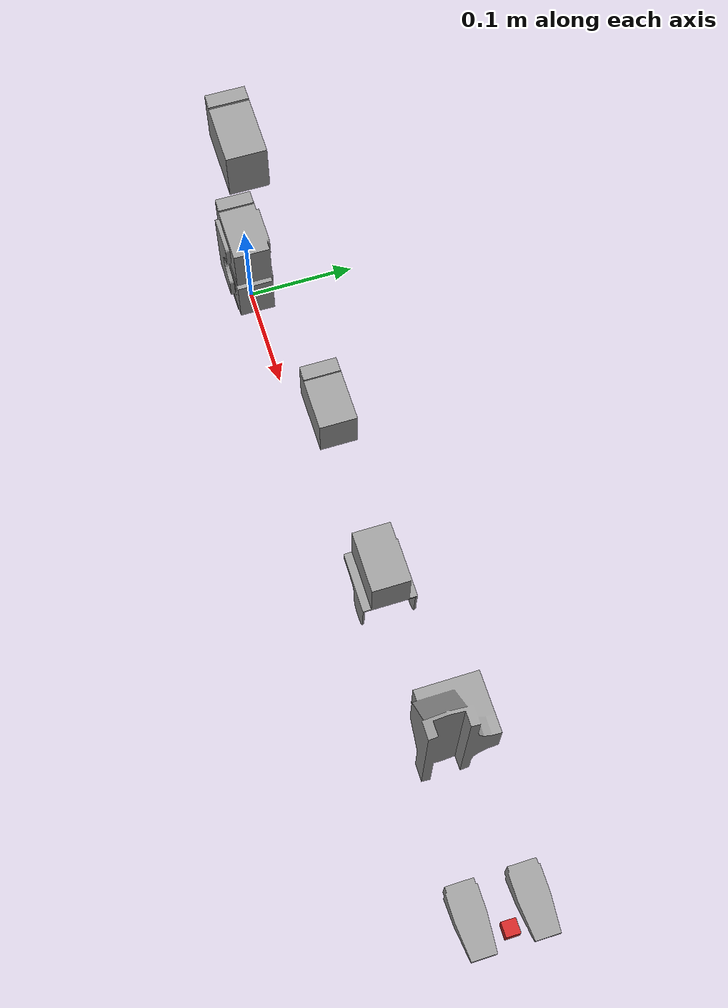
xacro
<?xml version="1.0"?>
<!-- Open_Manipulator Chain -->
<robot name="manipulator" xmlns:xacro="http://ros.org/wiki/xacro">

  <!-- Import Rviz colors -->
  <xacro:include filename="$(find manipulator_description)/urdf/materials.xacro" />

  <!-- Import all Gazebo-customization elements, including Gazebo colors -->
  <xacro:include filename="$(find manipulator_description)/urdf/manipulator.gazebo.xacro" />

  <!-- Import Transmission -->
  <xacro:include filename="$(find manipulator_description)/urdf/manipulator.transmission.xacro" />

  <!-- Import URDF -->
  <xacro:include filename="$(find manipulator_description)/urdf/manipulator.urdf.xacro" />

  <!-- World -->
  <link name="world"/>

  <!-- World fixed joint-->
  <joint name="world_fixed" type="fixed">
    <origin xyz="0 0 0" rpy="0 0 0"/>
    <parent link="world"/>
    <child link="link0"/>
  </joint>

</robot>

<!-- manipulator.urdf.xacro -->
<!-- Manipulator Chain -->
<robot xmlns:xacro="http://ros.org/wiki/xacro">

  <!-- Link 0 -->
  <link name="link0"/>

  <!-- Joint 0 -->
  <joint name="joint0" type="fixed">
    <parent link="link0"/>
    <child link="link1"/>
    <origin xyz="0.0 0.0 0.0465" rpy="0 0 0"/>
  </joint>

  <!-- Link 1 -->
  <link name="link1">
    <visual>
      <origin xyz="0 0 0" rpy="0 0 0"/>
      <geometry>
        <mesh filename="package://manipulator_description/meshes/link1.stl" scale="0.001 0.001 0.001"/>
      </geometry>
      <material name="grey"/>
    </visual>

    <collision>
      <origin xyz="0 0 0" rpy="0 0 0"/>
      <geometry>
        <mesh filename="package://manipulator_description/meshes/link1.stl" scale="0.001 0.001 0.001"/>
      </geometry>
    </collision>

    <inertial>
      <origin xyz="3.0876154e-04 0.0000000e+00 -1.2176461e-04" />
      <mass value="7.9119962e-02" />
      <inertia ixx="1.2505234e-05" ixy="0.0" ixz="-1.7855208e-07"
               iyy="2.1898364e-05" iyz="0.0"
               izz="1.9267361e-05" />
    </inertial>
  </link>

  <!-- Joint 1 -->
  <joint name="joint1" type="revolute">
    <parent link="link1"/>
    <child link="link2"/>
    <origin xyz="0.012 0.0 0.017" rpy="0 0 0"/>
    <axis xyz="0 0 1"/>
    <limit velocity="4.8" effort="1" lower="${-pi*0.9}" upper="${pi*0.9}" />
  </joint>

  <!--  Link 2 -->
  <link name="link2">
    <visual>
      <origin xyz="0 0 0.019" rpy="0 0 0"/>
      <geometry>
        <mesh filename="package://manipulator_description/meshes/link2.stl" scale="0.001 0.001 0.001"/>
      </geometry>
      <material name="grey"/>
    </visual>

    <collision>
      <origin xyz="0 0 0.019" rpy="0 0 0"/>
      <geometry>
        <mesh filename="package://manipulator_description/meshes/link2.stl" scale="0.001 0.001 0.001"/>
      </geometry>
    </collision>

    <inertial>
      <origin xyz="-3.0184870e-04 5.4043684e-04 ${0.018 + 2.9433464e-02}" />
      <mass value="9.8406837e-02" />
      <inertia ixx="3.4543422e-05" ixy="-1.6031095e-08" ixz="-3.8375155e-07"
               iyy="3.2689329e-05" iyz="2.8511935e-08"
               izz="1.8850320e-05" />
    </inertial>
  </link>

  <!--  Joint 2 -->
  <joint name="joint2" type="revolute">
    <parent link="link2"/>
    <child link="link3"/>
    <origin xyz="0.0 0.0 0.0595" rpy="0 0 0"/>
    <axis xyz="0 1 0"/>
    <limit velocity="4.8" effort="1" lower="${-pi*0.57}" upper="${pi*0.5}" />
  </joint>

  <!--  Link 3 -->
  <link name="link3">
    <visual>
      <origin xyz="0 0 0" rpy="0 0 0"/>
      <geometry>
        <mesh filename="package://manipulator_description/meshes/link3.stl" scale="0.001 0.001 0.001"/>
      </geometry>
      <material name="grey"/>
    </visual>

    <collision>
      <origin xyz="0 0 0" rpy="0 0 0"/>
      <geometry>
        <mesh filename="package://manipulator_description/meshes/link3.stl" scale="0.001 0.001 0.001"/>
      </geometry>
    </collision>

    <inertial>
      <origin xyz="1.0308393e-02 3.7743363e-04 1.0170197e-01" />
      <mass value="1.3850917e-01" />
      <inertia ixx="3.3055381e-04" ixy="-9.7940978e-08" ixz="-3.8505711e-05"
               iyy="3.4290447e-04" iyz="-1.5717516e-06"
               izz="6.0346498e-05" />
    </inertial>
  </link>

  <!--  Joint 3 -->
  <joint name="joint3" type="revolute">
    <parent link="link3"/>
    <child link="link4"/>
    <origin xyz="0.024 0 0.128" rpy="0 0 0"/>
    <axis xyz="0 1 0"/>
    <limit velocity="4.8" effort="1" lower="${-pi*0.3}" upper="${pi*0.44}" />
  </joint>

  <!--  Link 4 -->
  <link name="link4">
    <visual>
      <origin xyz="0 0 0" rpy="0 0 0"/>
      <geometry>
        <mesh filename="package://manipulator_description/meshes/link4.stl" scale="0.001 0.001 0.001"/>
      </geometry>
      <material name="grey"/>
    </visual>

    <collision>
      <origin xyz="0 0 0" rpy="0 0 0"/>
      <geometry>
        <mesh filename="package://manipulator_description/meshes/link4.stl" scale="0.001 0.001 0.001"/>
      </geometry>
    </collision>

    <inertial>
      <origin xyz="9.0909590e-02 3.8929816e-04 2.2413279e-04" />
      <mass value="1.3274562e-01" />
      <inertia ixx="3.0654178e-05" ixy="-1.2764155e-06" ixz="-2.6874417e-07"
               iyy="2.4230292e-04" iyz="1.1559550e-08"
               izz="2.5155057e-04" />
    </inertial>
  </link>

  <!--  Joint 4 -->
  <joint name="joint4" type="revolute">
    <parent link="link4"/>
    <child link="link5"/>
    <origin xyz="0.124 0.0 0.0" rpy="0 0 0"/>
    <axis xyz="0 1 0"/>
    <limit velocity="4.8" effort="1" lower="${-pi*0.57}" upper="${pi*0.65}" />
  </joint>

  <!--  Link 5 -->
  <link name="link5">
    <visual>
      <origin xyz="0 0 0" rpy="0 0 0"/>
      <geometry>
        <mesh filename="package://manipulator_description/meshes/link5.stl" scale="0.001 0.001 0.001"/>
      </geometry>
      <material name="grey"/>
    </visual>

    <collision>
      <origin xyz="0 0 0" rpy="0 0 0"/>
      <geometry>
        <mesh filename="package://manipulator_description/meshes/link5.stl" scale="0.001 0.001 0.001"/>
      </geometry>
    </collision>

    <inertial>
      <origin xyz="9.0909590e-02 3.8929816e-04 2.2413279e-04" />
      <mass value="1.3274562e-01" />
      <inertia ixx="3.0654178e-05" ixy="-1.2764155e-06" ixz="-2.6874417e-07"
               iyy="2.4230292e-04" iyz="1.1559550e-08"
               izz="2.5155057e-04" />
    </inertial>
  </link>

  <!--  Joint 5 -->
  <joint name="joint5" type="revolute">
    <parent link="link5"/>
    <child link="link6"/>
    <origin xyz="0.124 0.0 0.0" rpy="0 0 0"/>
    <axis xyz="0 1 0"/>
    <limit velocity="4.8" effort="1" lower="${-pi*0.57}" upper="${pi*0.65}" />
  </joint>

  <!--  Link 6 -->
  <link name="link6">
    <visual>
      <origin xyz="0 0 0" rpy="0 0 0"/>
      <geometry>
        <mesh filename="package://manipulator_description/meshes/link6.stl" scale="0.001 0.001 0.001"/>
      </geometry>
      <material name="grey"/>
    </visual>

    <collision>
      <origin xyz="0 0 0" rpy="0 0 0"/>
      <geometry>
        <mesh filename="package://manipulator_description/meshes/link6.stl" scale="0.001 0.001 0.001"/>
      </geometry>
    </collision>

    <inertial>
      <origin xyz="9.0909590e-02 3.8929816e-04 2.2413279e-04" />
      <mass value="1.3274562e-01" />
      <inertia ixx="3.0654178e-05" ixy="-1.2764155e-06" ixz="-2.6874417e-07"
               iyy="2.4230292e-04" iyz="1.1559550e-08"
               izz="2.5155057e-04" />
    </inertial>
  </link>

  <!--  Joint 6 -->
  <joint name="joint6" type="revolute">
    <parent link="link6"/>
    <child link="link7"/>
    <origin xyz="0.124 0.0 0.0" rpy="0 0 0"/>
    <axis xyz="0 1 0"/>
    <limit velocity="4.8" effort="1" lower="${-pi*0.57}" upper="${pi*0.65}" />
  </joint>

  <!--  Link 7 -->
  <link name="link7">
    <visual>
      <origin xyz="0 0 0" rpy="0 0 0"/>
      <geometry>
        <mesh filename="package://manipulator_description/meshes/link7.stl" scale="0.001 0.001 0.001"/>
      </geometry>
      <material name="grey"/>
    </visual>

    <collision>
      <origin xyz="0 0 0" rpy="0 0 0"/>
      <geometry>
        <mesh filename="package://manipulator_description/meshes/link7.stl" scale="0.001 0.001 0.001"/>
      </geometry>
    </collision>

    <inertial>
      <origin xyz="9.0909590e-02 3.8929816e-04 2.2413279e-04" />
      <mass value="1.3274562e-01" />
      <inertia ixx="3.0654178e-05" ixy="-1.2764155e-06" ixz="-2.6874417e-07"
               iyy="2.4230292e-04" iyz="1.1559550e-08"
               izz="2.5155057e-04" />
    </inertial>
  </link>

  <!--  Joint 7 -->
  <joint name="joint7" type="revolute">
    <parent link="link7"/>
    <child link="gripper"/>
    <origin xyz="0.124 0.0 0.0" rpy="0 0 0"/>
    <axis xyz="0 1 0"/>
    <limit velocity="4.8" effort="1" lower="${-pi*0.57}" upper="${pi*0.65}" />
  </joint>

  <!--  Gripper -->
  <link name="gripper">
    <visual>
      <origin xyz="0 0 0" rpy="0 0 0"/>
      <geometry>
        <mesh filename="package://manipulator_description/meshes/gripper.stl" scale="0.001 0.001 0.001"/>
      </geometry>
      <material name="grey"/>
    </visual>

    <collision>
      <origin xyz="0 0 0" rpy="0 0 0"/>
      <geometry>
        <mesh filename="package://manipulator_description/meshes/gripper.stl" scale="0.001 0.001 0.001"/>
      </geometry>
    </collision>

    <inertial>
      <origin xyz="4.4206755e-02 3.6839985e-07 8.9142216e-03" />
      <mass value="1.4327573e-01" />
      <inertia ixx="8.0870749e-05" ixy="0.0" ixz="-1.0157896e-06"
               iyy="7.5980465e-05" iyz="0.0"
               izz="9.3127351e-05" />
    </inertial>
  </link>

  <!--  Gripper joint 1 -->
  <joint name="gripper_joint1" type="prismatic">
    <parent link="gripper"/>
    <child link="finger_left"/>
    <origin xyz="0.0817 0.021 0.0" rpy="0 0 0"/>
    <axis xyz="0 1 0"/>
    <limit velocity="4.8" effort="1" lower="-0.010" upper="0.019" />
  </joint>

  <!-- Left finger link -->
  <link name="finger_left">
    <visual>
      <origin xyz="0.0 0.0 0" rpy="0 0 0"/>
      <geometry>
        <mesh filename="package://manipulator_description/meshes/finger.stl" scale="0.001 0.001 0.001"/>
      </geometry>
      <material name="grey"/>
    </visual>

    <collision>
      <origin xyz="0.0 0.0 0" rpy="0 0 0"/>
      <geometry>
        <mesh filename="package://manipulator_description/meshes/finger.stl" scale="0.001 0.001 0.001"/>
      </geometry>
    </collision>

    <inertial>
      <origin xyz="0 0 0" />
      <mass value="1.0e-03" />
      <inertia ixx="1.0e-03" ixy="0.0" ixz="0.0"
               iyy="1.0e-03" iyz="0.0"
               izz="1.0e-03" />
    </inertial>
  </link>

  <!--  Gripper joint 2 -->
  <joint name="gripper_joint2" type="prismatic">
    <parent link="gripper"/>
    <child link="finger_right"/>
    <origin xyz="0.0817 -0.021 0" rpy="0 0 0"/>
    <axis xyz="0 -1 0"/>
    <limit velocity="4.8" effort="1" lower="-0.010" upper="0.019" />
    <mimic joint="gripper" multiplier="1"/>
  </joint>

  <!-- Right finger link -->
  <link name="finger_right">
    <visual>
      <origin xyz="0.0 -0.0 0" rpy="0 0 0"/>
      <geometry>
        <mesh filename="package://manipulator_description/meshes/finger.stl" scale="0.001 0.001 0.001"/>
      </geometry>
      <material name="grey"/>
    </visual>

    <collision>
      <origin xyz="0.0 -0.0 0" rpy="0 0 0"/>
      <geometry>
        <mesh filename="package://manipulator_description/meshes/finger.stl" scale="0.001 0.001 0.001"/>
      </geometry>
    </collision>

    <inertial>
      <origin xyz="0 0 0" />
      <mass value="1.0e-03" />
      <inertia ixx="1.0e-03" ixy="0.0" ixz="0.0"
               iyy="1.0e-03" iyz="0.0"
               izz="1.0e-03" />
    </inertial>
  </link>

  <!-- end effector joint -->
  <joint name="end_effector_joint" type="fixed">
    <origin xyz="0.126 0.0 0.0" rpy="0 0 0"/>
    <parent link="gripper"/>
    <child link="end_effector_link"/>
  </joint>

  <!-- end effector link -->
  <link name="end_effector_link">
    <visual>
      <origin xyz="0 0 0" rpy="0 0 0"/>
      <geometry>
        <box size="0.01 0.01 0.01" />
      </geometry>
      <material name="red"/>
     </visual>

    <inertial>
      <origin xyz="0 0 0" />
      <mass value="1.0e-03" />
      <inertia ixx="1.0e-03" ixy="0.0" ixz="0.0"
               iyy="1.0e-03" iyz="0.0"
               izz="1.0e-03" />
    </inertial>
  </link>

  <!-- Realsense Camera Joint Position -->
  <joint name="camera_joint" type="fixed">
    <axis xyz="0 1 0" />
    <origin xyz="0.070 0.032 0.052" rpy="0 0 0"/>
    <parent link="link5"/>
    <child link="camera_link"/>
  </joint>

  <link name="camera_link"/>

</robot>
